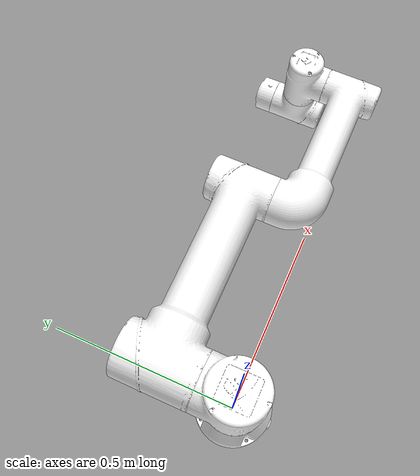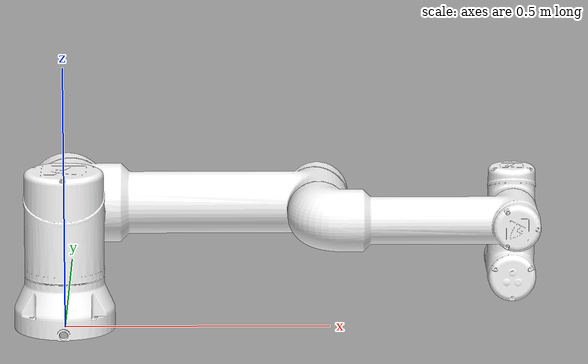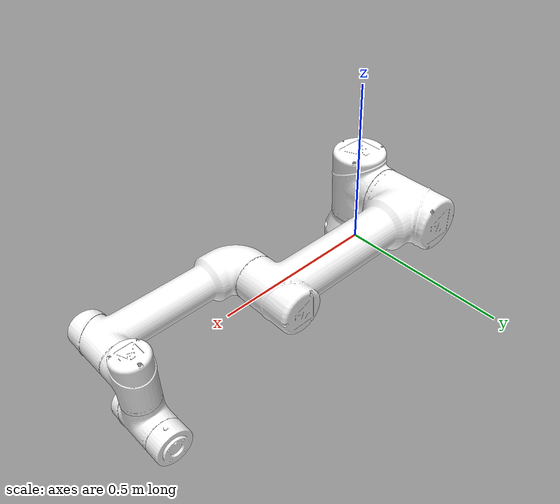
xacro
<?xml version="1.0"?>
<robot xmlns:xacro="http://www.ros.org/wiki/xacro" name="GBT_C16A">
    <xacro:arg name="initial_positions_file" default="initial_positions.yaml" />

    <!-- Import GBT_C16A urdf file -->
    <xacro:include filename="$(find gbt_description)/urdf/GBT_C16A.urdf" />

    <!-- Import control_xacro -->
    <xacro:include filename="GBT_C16A.ros2_control.xacro" />

    <xacro:GBT_C16A_ros2_control name="FakeSystem" initial_positions_file="$(arg initial_positions_file)"/>

</robot>

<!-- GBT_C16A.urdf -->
<robot
  name="GBT_C16A">
  <link
    name="base_link">
    <inertial>
      <origin
        xyz="1.33301360146722E-06 -0.00616408830371303 0.0516815599396511"
        rpy="0 0 0" />
      <mass
        value="13.8420238188937" />
      <inertia
        ixx="0.0402209002946215"
        ixy="1.33023985236199E-05"
        ixz="-7.5728592175057E-07"
        iyy="0.0320808729564654"
        iyz="0.000589928926648181"
        izz="0.0593524877670578" />
    </inertial>
    <visual>
      <origin
        xyz="0 0 0"
        rpy="0 0 0" />
      <geometry>
        <mesh
          filename="package://gbt_description/meshes/visual/c16a/c16a_base.dae" />
      </geometry>
      <material
        name="">
        <color
          rgba="1 1 1 1" />
      </material>
    </visual>
    <collision>
      <origin
        xyz="0 0 0"
        rpy="0 0 0" />
      <geometry>
        <mesh
          filename="package://gbt_description/meshes/collision/c16a/c16a_base.STL" />
      </geometry>
    </collision>
  </link>
  <link
    name="link1">
    <inertial>
      <origin
        xyz="-4.71267874760478E-05 0.0057888896498076 0.10293432736084"
        rpy="0 0 0" />
      <mass
        value="31.1501990144652" />
      <inertia
        ixx="0.154836982001998"
        ixy="5.762941462276E-05"
        ixz="1.01751815070728E-07"
        iyy="0.149492778870936"
        iyz="0.000121771535896935"
        izz="0.0979860661669849" />
    </inertial>
    <visual>
      <origin
        xyz="0 0 0"
        rpy="0 0 0" />
      <geometry>
        <mesh
          filename="package://gbt_description/meshes/visual/c16a/c16a_1.dae" />
      </geometry>
      <material
        name="">
        <color
          rgba="1 1 1 1" />
      </material>
    </visual>
    <collision>
      <origin
        xyz="0 0 0"
        rpy="0 0 0" />
      <geometry>
        <mesh
          filename="package://gbt_description/meshes/collision/c16a/c16a_1.STL" />
      </geometry>
    </collision>
  </link>
  <joint
    name="joint1"
    type="revolute">
    <origin
      xyz="0 0 0.094"
      rpy="0 0 0" />
    <parent
      link="base_link" />
    <child
      link="link1" />
    <axis
      xyz="0 0 1" />
    <limit
      lower="-6.283185307179"
      upper="6.283185307179"
      effort="100"
      velocity="1" />
  </joint>
  <link
    name="link2">
    <inertial>
      <origin
        xyz="0.195486783957097 1.35127910679544E-05 0.102928960009867"
        rpy="0 0 0" />
      <mass
        value="77.3799588228002" />
      <inertia
        ixx="0.258537864361677"
        ixy="0.000340011020527351"
        ixz="-0.00642832949026279"
        iyy="2.98579493520843"
        iyz="3.75616744324944E-05"
        izz="2.90555358847153" />
    </inertial>
    <visual>
      <origin
        xyz="0 0 0"
        rpy="0 0 0" />
      <geometry>
        <mesh
          filename="package://gbt_description/meshes/visual/c16a/c16a_2.dae" />
      </geometry>
      <material
        name="">
        <color
          rgba="1 1 1 1" />
      </material>
    </visual>
    <collision>
      <origin
        xyz="0 0 0"
        rpy="0 0 0" />
      <geometry>
        <mesh
          filename="package://gbt_description/meshes/collision/c16a/c16a_2.STL" />
      </geometry>
    </collision>
  </link>
  <joint
    name="joint2"
    type="revolute">
    <origin
      xyz="0 0.082 0.102"
      rpy="-1.5708 0 0" />
    <parent
      link="link1" />
    <child
      link="link2" />
    <axis
      xyz="0 0 -1" />
    <limit
      lower="-1.483529864195"
      upper="4.625122517784"
      effort="100"
      velocity="1" />
  </joint>
  <link
    name="link3">
    <inertial>
      <origin
        xyz="-0.178416784377752 3.57162691924651E-06 0.060338121448731"
        rpy="0 0 0" />
      <mass
        value="31.0838905830824" />
      <inertia
        ixx="0.051261740846832"
        ixy="1.64560898355033E-05"
        ixz="0.021314063622931"
        iyy="0.671544701475308"
        iyz="-2.20352566173481E-06"
        izz="0.660420893373503" />
    </inertial>
    <visual>
      <origin
        xyz="0 0 0"
        rpy="0 0 0" />
      <geometry>
        <mesh
          filename="package://gbt_description/meshes/visual/c16a/c16a_3.dae" />
      </geometry>
      <material
        name="">
        <color
          rgba="1 1 1 1" />
      </material>
    </visual>
    <collision>
      <origin
        xyz="0 0 0"
        rpy="0 0 0" />
      <geometry>
        <mesh
          filename="package://gbt_description/meshes/collision/c16a/c16a_3.STL" />
      </geometry>
    </collision>
  </link>
  <joint
    name="joint3"
    type="revolute">
    <origin
      xyz="0.48 0 0.018"
      rpy="-3.1416 0 3.1416" />
    <parent
      link="link2" />
    <child
      link="link3" />
    <axis
      xyz="0 0 1" />
    <limit
      lower="-2.879793265790"
      upper="2.879793265790"
      effort="100"
      velocity="1" />
  </joint>
  <link
    name="link4">
    <inertial>
      <origin
        xyz="6.50176670324853E-06 2.84501828613226E-05 0.0515242101702979"
        rpy="0 0 0" />
      <mass
        value="8.31372682014782" />
      <inertia
        ixx="0.0191355192345629"
        ixy="1.55540435454683E-07"
        ixz="3.17241145505299E-07"
        iyy="0.0100182469096591"
        iyz="-1.11547225614069E-05"
        izz="0.0179431883590845" />
    </inertial>
    <visual>
      <origin
        xyz="0 0 0"
        rpy="0 0 0" />
      <geometry>
        <mesh
          filename="package://gbt_description/meshes/visual/c16a/c16a_4.dae" />
      </geometry>
      <material
        name="">
        <color
          rgba="1 1 1 1" />
      </material>
    </visual>
    <collision>
      <origin
        xyz="0 0 0"
        rpy="0 0 0" />
      <geometry>
        <mesh
          filename="package://gbt_description/meshes/collision/c16a/c16a_4.STL" />
      </geometry>
    </collision>
  </link>
  <joint
    name="joint4"
    type="revolute">
    <origin
      xyz="-0.37 0 -0.0098"
      rpy="-3.1416 0 3.1416" />
    <parent
      link="link3" />
    <child
      link="link4" />
    <axis
      xyz="0 0 -1" />
    <limit
      lower="-1.483529864195"
      upper="4.625122517784"
      effort="100"
      velocity="0" />
  </joint>
  <link
    name="link5">
    <inertial>
      <origin
        xyz="-6.92495234433377E-06 -3.1252560565298E-06 -0.0515254760378946"
        rpy="0 0 0" />
      <mass
        value="8.3160322765612" />
      <inertia
        ixx="0.0191572064909686"
        ixy="-2.8320293401359E-07"
        ixz="4.27186848686796E-07"
        iyy="0.0100128626777276"
        iyz="9.07663155425601E-06"
        izz="0.017964291723577" />
    </inertial>
    <visual>
      <origin
        xyz="0 0 0"
        rpy="0 0 0" />
      <geometry>
        <mesh
          filename="package://gbt_description/meshes/visual/c16a/c16a_5.dae" />
      </geometry>
      <material
        name="">
        <color
          rgba="1 1 1 1" />
      </material>
    </visual>
    <collision>
      <origin
        xyz="0 0 0"
        rpy="0 0 0" />
      <geometry>
        <mesh
          filename="package://gbt_description/meshes/collision/c16a/c16a_5.STL" />
      </geometry>
    </collision>
  </link>
  <joint
    name="joint5"
    type="revolute">
    <origin
      xyz="0 0.0738 0.057"
      rpy="1.5708 0 0" />
    <parent
      link="link4" />
    <child
      link="link5" />
    <axis
      xyz="0 0 -1" />
    <limit
      lower="-6.283185307179"
      upper="6.283185307179"
      effort="100"
      velocity="1" />
  </joint>
  <link
    name="link6">
    <inertial>
      <origin
        xyz="1.44604180851715E-08 0.000134230776969571 0.0189327850855688"
        rpy="0 0 0" />
      <mass
        value="1.92416514196933" />
      <inertia
        ixx="0.00120427681943017"
        ixy="1.95743889305468E-09"
        ixz="1.77375460507358E-09"
        iyy="0.00121783787068554"
        iyz="1.15549591269221E-06"
        izz="0.00191743883679376" />
    </inertial>
    <visual>
      <origin
        xyz="0 0 0"
        rpy="0 0 0" />
      <geometry>
        <mesh
          filename="package://gbt_description/meshes/visual/c16a/c16a_6.dae" />
      </geometry>
      <material
        name="">
        <color
          rgba="1 1 1 1" />
      </material>
    </visual>
    <collision>
      <origin
        xyz="0 0 0"
        rpy="0 0 0" />
      <geometry>
        <mesh
          filename="package://gbt_description/meshes/collision/c16a/c16a_6.STL" />
      </geometry>
    </collision>
  </link>
  <joint
    name="joint6"
    type="revolute">
    <origin
      xyz="0 0.0738 -0.057"
      rpy="-1.5708 0 0" />
    <parent
      link="link5" />
    <child
      link="link6" />
    <axis
      xyz="0 0 1" />
    <limit
      lower="-6.283185307179"
      upper="6.283185307179"
      effort="100"
      velocity="1" />
  </joint>
</robot>
